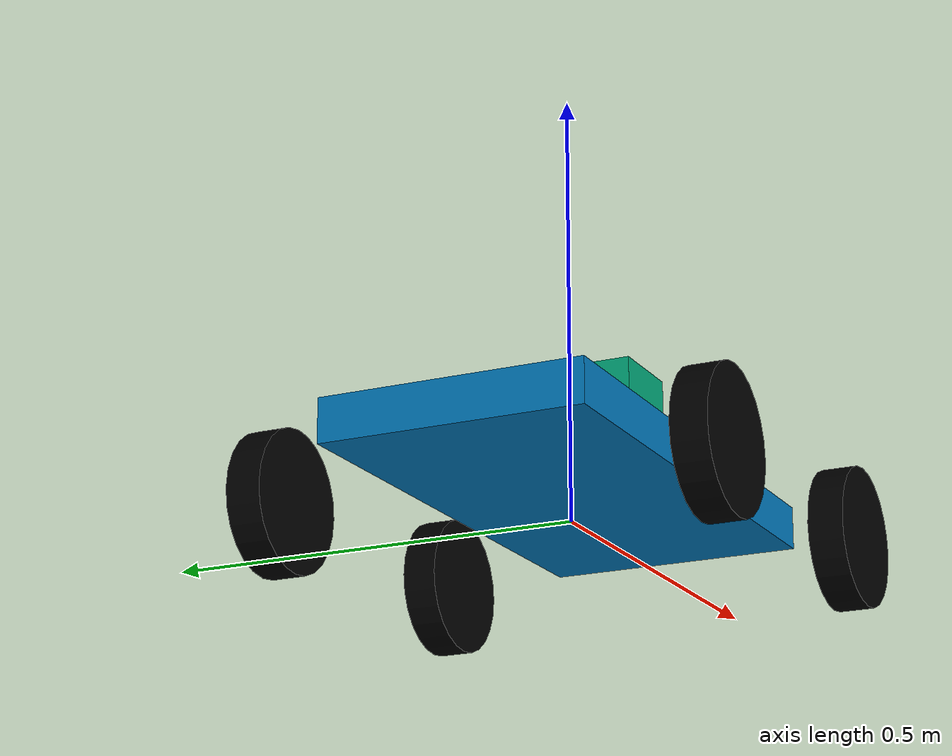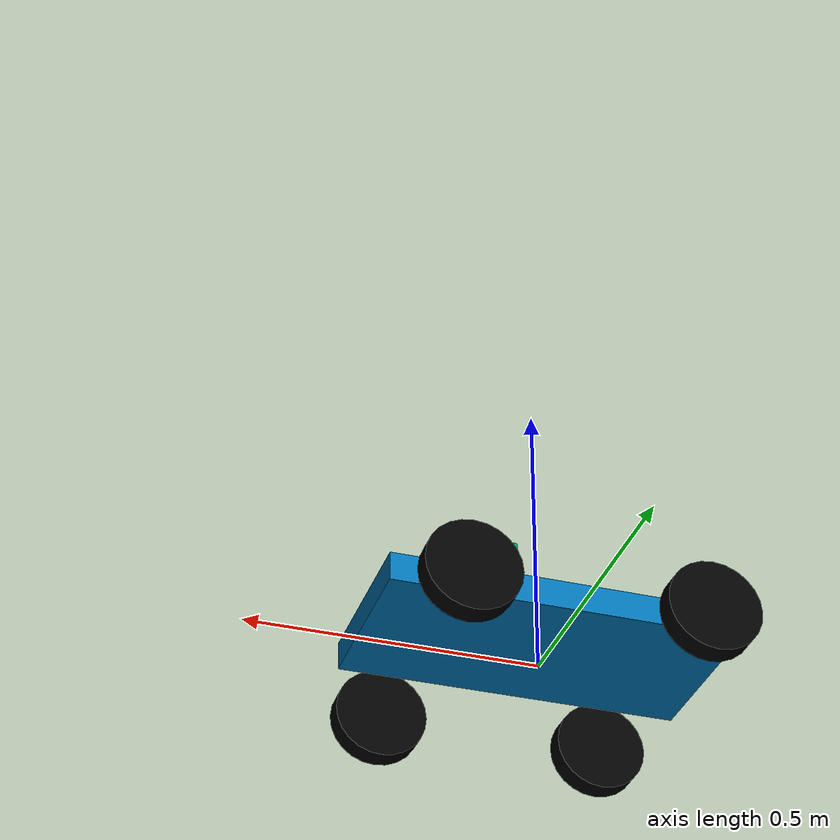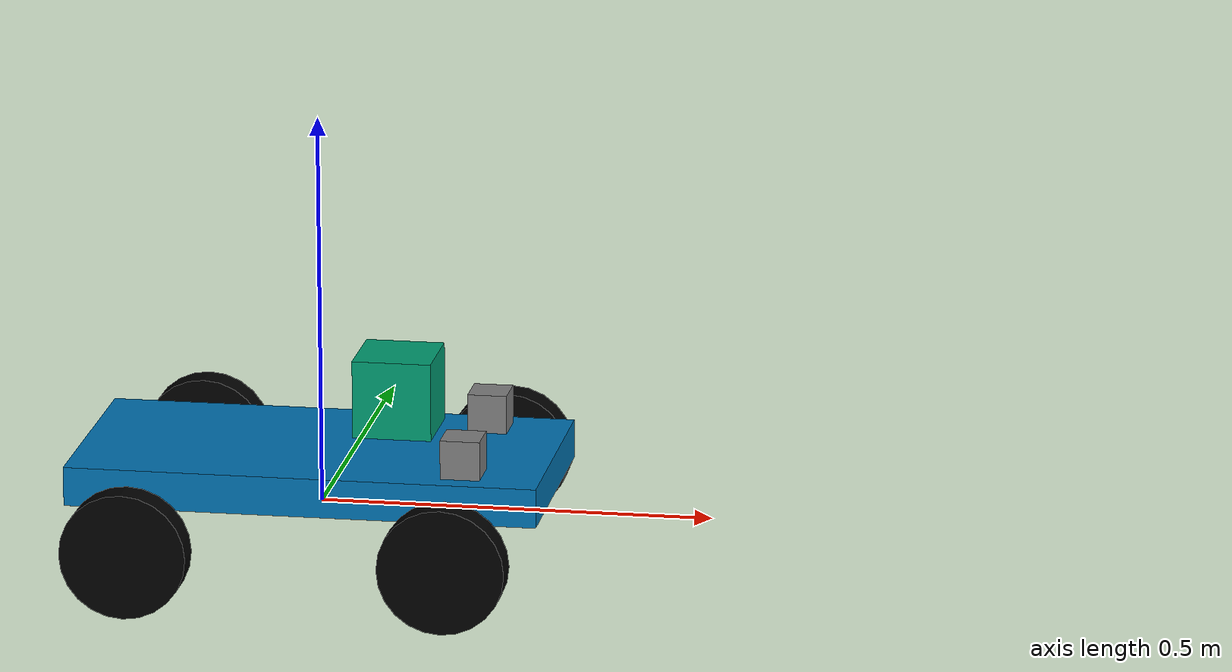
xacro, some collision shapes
<?xml version='1.0' ?>

<robot name="jetracer" xmlns:xacro="http://www.ros.org/wiki/xacro">

  <material name="black">
    <color rgba="0 0 0 1"/>
  </material>

  <material name="blue">
    <color rgba="0.5 0.5 0.5 1"/>
  </material>

  <joint name="camera_joint" type="fixed">
      <origin xyz="0.20 -0.10 0.1" rpy="0 0 0" />
      <parent link="base"/>
      <child link="camera" />
      <axis xyz="0 1 0"/>
  </joint>

<joint name="sensor_joint" type="fixed">
      <origin xyz="0.20 0.10 0.1" rpy="0 0 0" />
      <parent link="base"/>
      <child link="sensor" />
      <axis xyz="0 1 0"/>
  </joint>

  <!--SENSOR-->
<link name="sensor">
    <inertial>
      <mass value="0.1"/>
      <origin xyz="0 0 0" rpy="0 0 0"/>
      <inertia
        ixx="1e-6" ixy="0.0" ixz="0.0"
        iyy="1e-6" iyz="0.0"
        izz="1e-6"
      />
    </inertial>

    <collision>
      <origin xyz="0 0 0" rpy="0 0 0"/>
      <geometry>
        <box size="0.05 0.05 0.05"/>
      </geometry>
    </collision>

    <visual>
      <origin xyz="0 0 0" rpy="0 0 0"/>
      <geometry>
        <box size="0.05 0.05 0.05"/>
      </geometry>
      <material name="blue"/>
    </visual>

  </link>
  <!-- CAMARA -->
  <link name="camera">
    <inertial>
      <mass value="0.1"/>
      <origin xyz="0 0 0" rpy="0 0 0"/>
      <inertia
        ixx="1e-6" ixy="0.0" ixz="0.0"
        iyy="1e-6" iyz="0.0"
        izz="1e-6"
      />
    </inertial>

    <collision>
      <origin xyz="0 0 0" rpy="0 0 0"/>
      <geometry>
        <box size="0.05 0.05 0.05"/>
      </geometry>
    </collision>

    <visual>
      <origin xyz="0 0 0" rpy="0 0 0"/>
      <geometry>
        <box size="0.05 0.05 0.05"/>
      </geometry>
      <material name="blue"/>
    </visual>

  </link>

  <!--LASER-->
    <joint name="hokuyo_joint" type="fixed">
      <origin xyz="0.10 0 0.15" rpy="0 0 0" />
      <parent link="base"/>
      <child link="hokuyo" />
      <axis xyz="0 1 0"/>
    </joint>

  <link name="hokuyo">
    <inertial>
      <mass value="1e-5"/>
      <origin xyz="0 0 0" rpy="0 0 0"/>
      <inertia
        ixx="1e-6" ixy="0.0" ixz="0.0"
        iyy="1e-6" iyz="0.0"
        izz="1e-6"
      />
    </inertial>

    <collision>
      <origin xyz="0 0 0" rpy="0 0 0"/>
      <geometry>
        <box size="0.1 0.1 0.1"/>
      </geometry>
    </collision>

    <visual>
      <origin xyz="0 0 0" rpy="0 0 0"/>
      <geometry>
        <mesh filename="package://trixy/meshes/hokuyo.dae"/>
      </geometry>
    </visual>

  </link>

    <link name="robot_footprint"></link>

    <joint name="robot_footprint_joint" type="fixed">
      <origin xyz="0 0 0" rpy="0 0 0" />
      <parent link="robot_footprint"/>
      <child link="base" />
    </joint>

<!--BASE-->
  <link name="base">
    <pose>0 0 0 0 0 0</pose>

    <inertial>
      <mass value="0.2"/>
      <origin xyz="0 0 0.05" rpy=" 0 0 0"/>
      <inertia
          ixx="0.1" ixy="0" ixz="0"
          iyy="0.1" iyz="0"
          izz="0.1"
      />
    </inertial>

    <collision name='base_collision'>
      <origin xyz="0 0 0.05" rpy=" 0 0 0"/>
      <geometry>
        <box size="0.6 0.3 0.05"/>
      </geometry>
    </collision>

    <visual name='base_visual'>
      <origin xyz="0 0 0.05" rpy=" 0 0 0"/>
      <geometry>
        <box size="0.6 0.3 0.05"/>
      </geometry>
    </visual>

  </link>

  <!--Front left wheel-->
  <joint name="fl_holder_joint" type="revolute">
    <axis xyz="0 0 1"/>
    <limit effort="1000.0" lower="-0.4" upper="0.4" velocity="0.5"/>
    <origin rpy="0 0 0" xyz="0.2 0.25 0"/>
    <parent link="base"/>
    <child link="fl_wheel_link"/>
  </joint>

  <link name="fl_wheel_link">
    <inertial>
      <mass value="1e-4"/>
      <origin rpy="0 0 0" xyz="0.7 0.8 0"/>
      <inertia
        ixx="0.1" ixy="0.0" ixz="0.0"
        iyy="0.1" iyz="0.0"
        izz="0.1"
      />
    </inertial>
    <collision>
     <origin rpy="0 0 0" xyz="0.7 0.8 0"/>
      <geometry>
        <box size="0 0 0"/>
      </geometry>
    </collision>
    <visual>
      <origin rpy="0 0 0" xyz="0.7 0.8 0"/>
     <geometry>
        <box size="0 0 0"/>
      </geometry>
    </visual>
  </link>

  <joint name="fl_wheel_joint" type="continuous">
    <axis xyz="0 1 0"/>
    <origin rpy="0 0 0" xyz="0 0 0"/>
    <parent link="fl_wheel_link"/>
    <child link="fl_wheel"/>
  </joint>

  <link name="fl_wheel">
    <inertial>
        <mass value="1e-4"/>
      <origin  xyz="0 0 0" rpy="1.5708 0 0" />
        <inertia
          ixx="0.1" ixy="0.0" ixz="0.0"
          iyy="0.1" iyz="0.0"
          izz="0.1"
        />
      </inertial>
    <collision>
        <origin  xyz="0 0 0" rpy="1.5708 0 0" />
        <geometry>
          <cylinder radius="0.08" length="0.04"/>
        </geometry>
      </collision>
    <visual>
      <origin  xyz="0 0 0" rpy="1.5708 0 0" />
      <geometry>
        <cylinder radius="0.08" length="0.04"/>
      </geometry>
      <material name="black"/>
    </visual>
  </link>

  <!--Front right wheel-->
  <joint name="fr_holder_joint" type="revolute">
    <axis xyz="1 0 0"/>
    <limit effort="1000.0" lower="-0.4" upper="0.4" velocity="0.5"/>
    <origin rpy="0 0 0" xyz="0.2 -0.25 0"/>
    <parent link="base"/>
    <child link="fr_wheel_link"/>
  </joint>

  <link name="fr_wheel_link">
    <inertial>
      <mass value="1e-4"/>
      <origin rpy="0 0 0" xyz="0.7 0.8 0"/>
      <inertia
        ixx="0.1" ixy="0.0" ixz="0.0"
        iyy="0.1" iyz="0.0"
        izz="0.1"
      />
    </inertial>
    <collision>
     <origin rpy="0 0 0" xyz="0.7 0.8 0"/>
      <geometry>
        <box size="0 0 0"/>
      </geometry>
    </collision>
    <visual>
      <origin rpy="0 0 0" xyz="0.7 0.8 0"/>
     <geometry>
        <box size="0 0 0"/>
      </geometry>
    </visual>
  </link>

  <joint name="fr_wheel_joint" type="continuous">
    <axis xyz="0 1 0"/>
    <origin rpy="0 0 0" xyz="0 0 0"/>
    <parent link="fr_wheel_link"/>
    <child link="fr_wheel"/>
  </joint>

  <link name="fr_wheel">
    <inertial>
        <mass value="1e-4"/>
      <origin  xyz="0 0 0" rpy="1.5708 0 0" />
        <inertia
          ixx="0.1" ixy="0.0" ixz="0.0"
          iyy="0.1" iyz="0.0"
          izz="0.1"
        />
      </inertial>
    <collision>
        <origin  xyz="0 0 0" rpy="1.5708 0 0" />
        <geometry>
          <cylinder radius="0.08" length="0.04"/>
        </geometry>
      </collision>
    <visual>
      <origin  xyz="0 0 0" rpy="1.5708 0 0" />
      <geometry>
        <cylinder radius="0.08" length="0.04"/>
      </geometry>
      <material name="black"/>
    </visual>
  </link>

  <!--Rear left wheel-->
  <joint name="rl_wheel_joint" type="continuous">
    <axis xyz="0 1 0"/>
    <origin rpy="0 0 0" xyz="-0.2 0.25 0"/>
    <parent link="base"/>
    <child link="rl_wheel"/>
  </joint>

  <link name="rl_wheel">
    <visual>
    <origin rpy="1.5708 0 0" xyz="0 0 0"/>
      <geometry>
        <cylinder radius="0.08" length="0.04"/>
      </geometry>
      <material name="black"/>
    </visual>
  </link>

  <!--Rear right wheel-->
  <joint name="rr_wheel_joint" type="continuous">
    <axis xyz="0 1 0"/>
    <origin rpy="1.5708 0 0" xyz="-0.2 -0.25 0"/>
    <parent link="base"/>

    <child link="rr_wheel"/>
  </joint>

  <link name="rr_wheel">
    <visual>
      <origin rpy="0 0 0" xyz="0 0 0"/>
      <geometry>
        <cylinder radius="0.08" length="0.04"/>
      </geometry>
      <material name="black"/>
    </visual>
  </link>

</robot>
